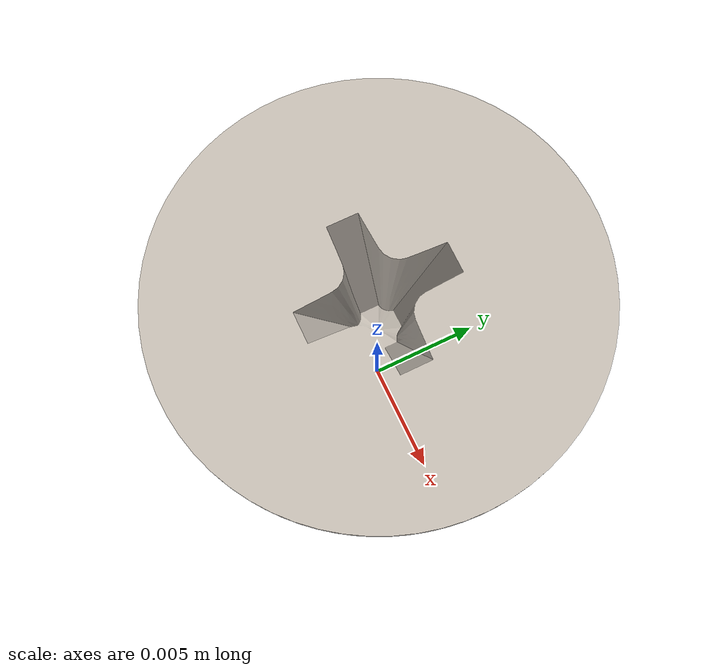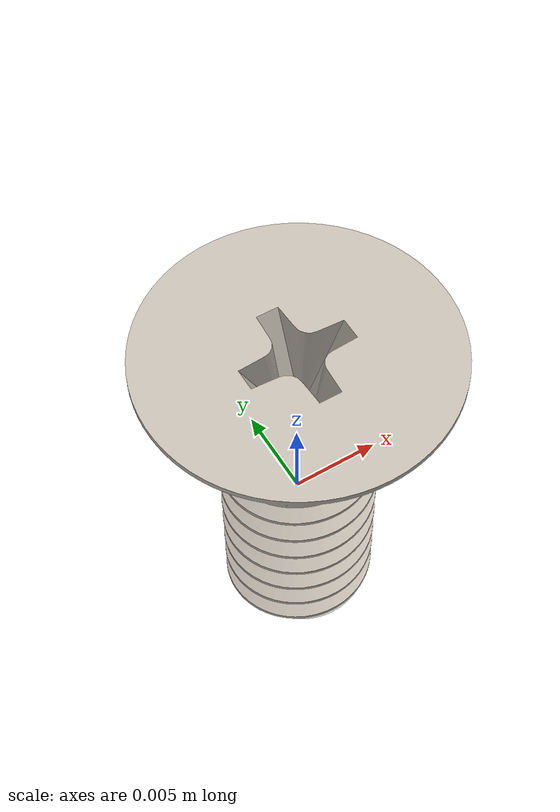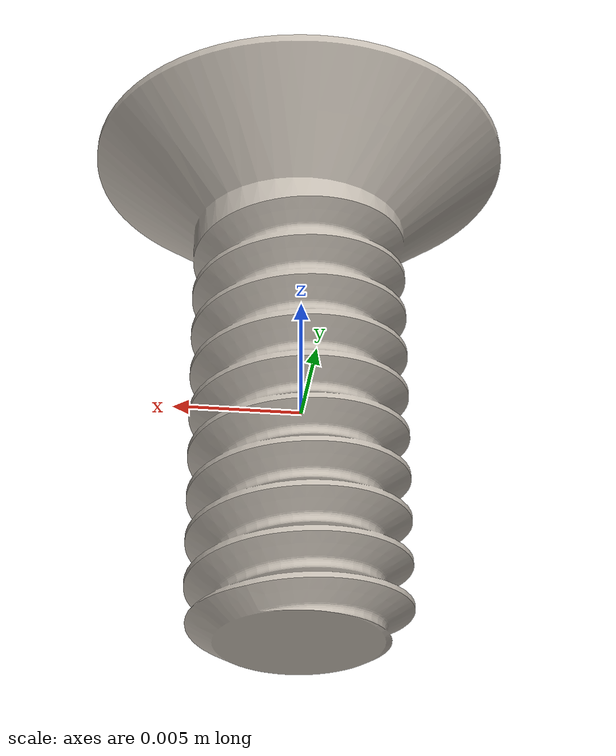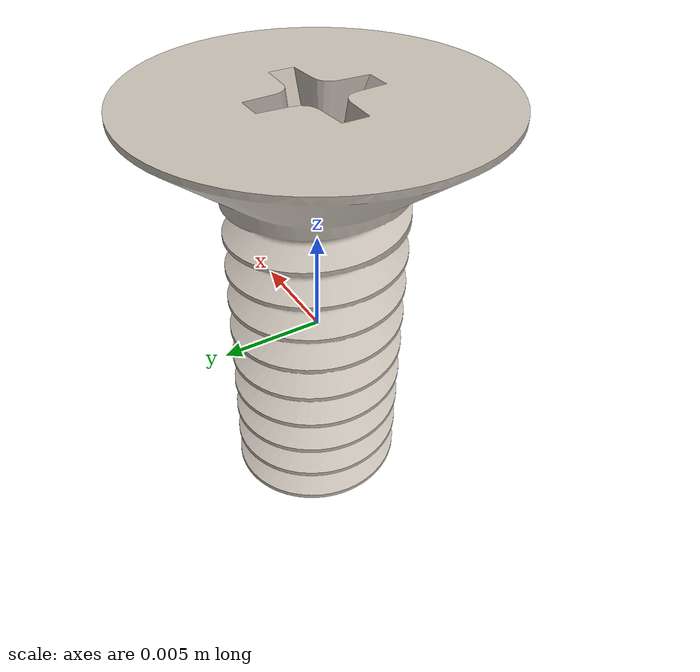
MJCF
<?xml version="1.0" encoding="UTF-8"?>
<mujoco model="flathead_machine_philips">
  <asset>
    <texture type="2d" file="textures/metal.png" name="metal_tex"/>
    <material name="metal_mat" texture="metal_tex" specular="0.9" shininess="0.7" reflectance="0.25"/>
    <mesh name="flathead_machine_philips_mesh" file="meshes/flathead_machine_philips.stl"/>
  </asset>
  <worldbody>
    <body name="flathead_machine_philips" pos="0 0 0">
      <freejoint name="flathead_machine_philips_joint"/>
      <geom name="flathead_machine_philips_visual" type="mesh" mesh="flathead_machine_philips_mesh"
            material="metal_mat" group="1" contype="0" conaffinity="0"/>
      <geom name="flathead_machine_philips_col" type="cylinder" group="3"
            size="0.00851656 0.0107394"
            pos="0 0 0.00114834" quat="1 0 0 0"
            mass="0.001" friction="1.0 0.05 0.001" condim="4"/>
    </body>
  </worldbody>
</mujoco>
